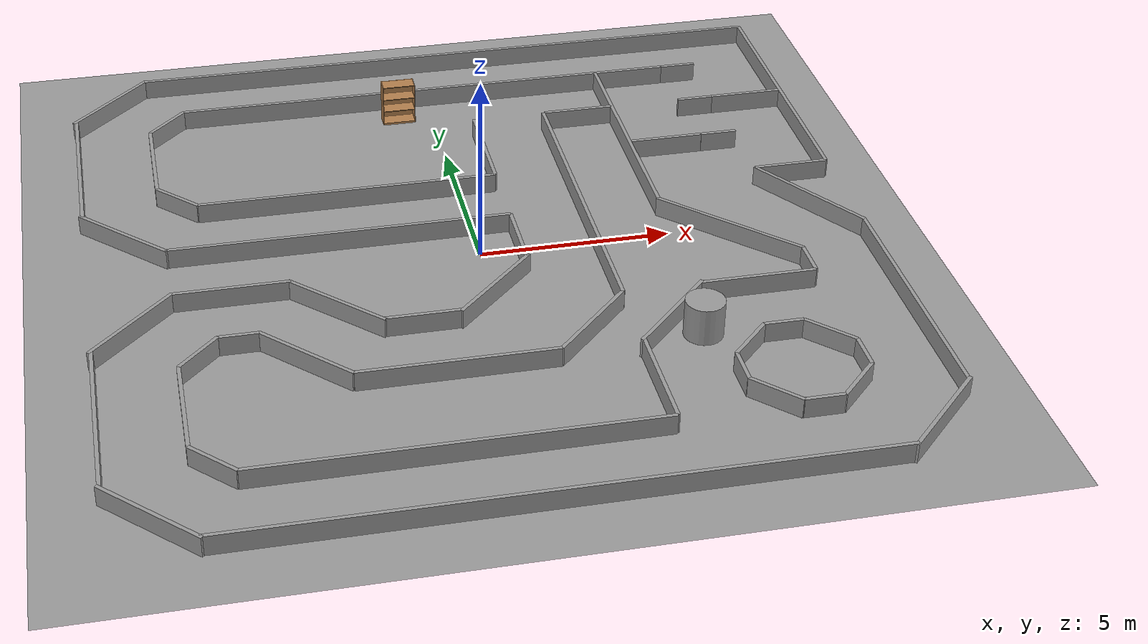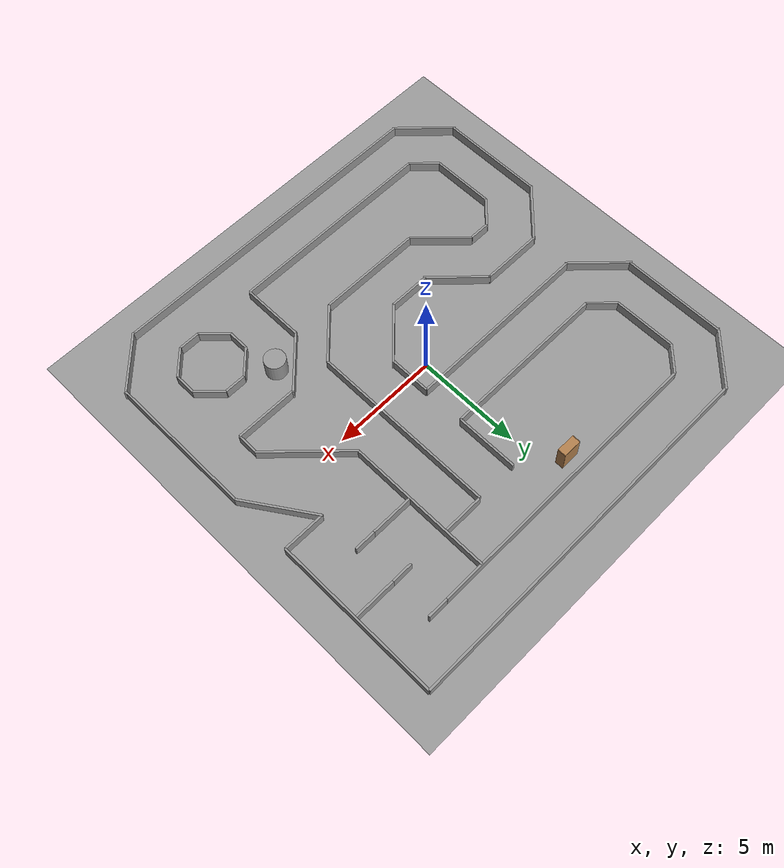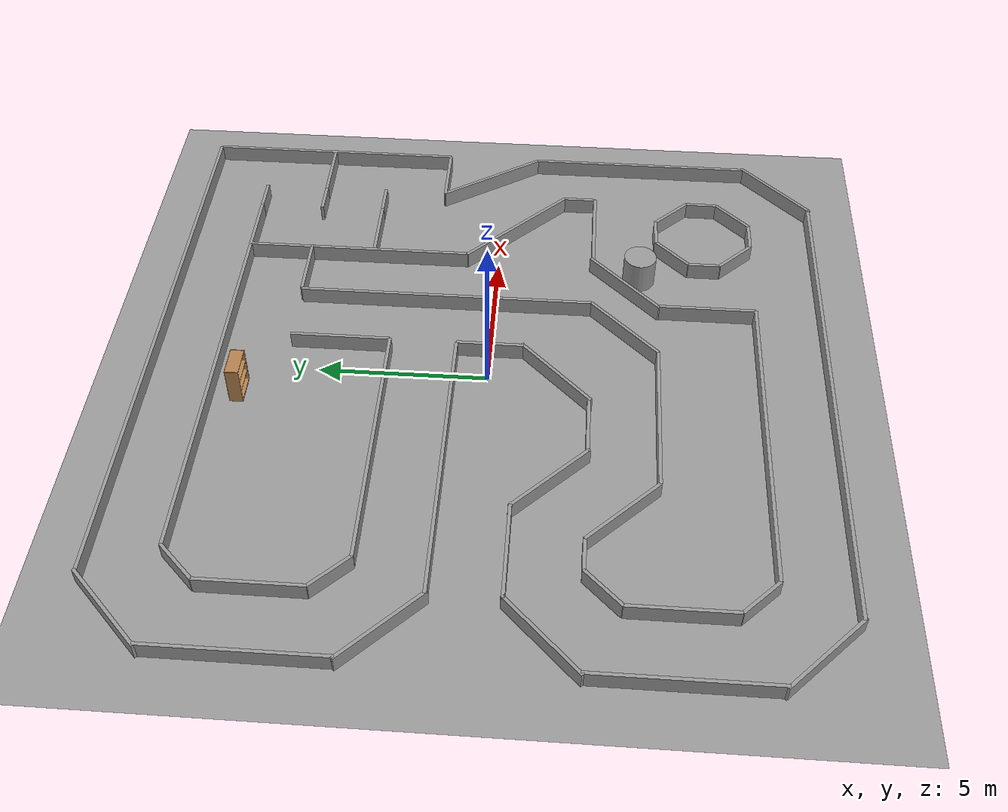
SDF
<sdf version="1.7">
 <world name="default">
  <light name="sun" type="directional">
   <pose>0 0 10 0 -0 0</pose>
   <diffuse>0.8 0.8 0.8 1</diffuse>
   <specular>0.2 0.2 0.2 1</specular>
   <attenuation>
    <range>1000</range>
    <constant>0.9</constant>
    <linear>0.01</linear>
    <quadratic>0.001</quadratic>
   </attenuation>
   <direction>0.5 0.1 -0.9</direction>
   <spot><inner_angle>0</inner_angle><outer_angle>0</outer_angle><falloff>0</falloff></spot>
  </light>
  <scene><ambient>0.4 0.4 0.4 1</ambient><background>0.7 0.7 0.7 1</background><shadows>1</shadows></scene>
  <physics type="ode">
   <max_step_size>0.01</max_step_size>
   <real_time_factor>1</real_time_factor>
   <real_time_update_rate>100</real_time_update_rate>
  </physics>
  <model name="bookshelf">
   <static>1</static>
   <link name="link">
    <inertial><mass>1</mass></inertial>
    <collision name="back">
     <pose>0 0.005 0.6 0 -0 0</pose>
     <geometry><box><size>0.9 0.01 1.2</size></box></geometry>
    </collision>
    <visual name="visual1">
     <pose>0 0.005 0.6 0 -0 0</pose>
     <geometry><box><size>0.9 0.01 1.2</size></box></geometry>
     <material>
      <script><uri>file://media/materials/scripts/gazebo.material</uri><name>Gazebo/Wood</name></script>
     </material>
    </visual>
    <collision name="left_side">
     <pose>0.45 -0.195 0.6 0 -0 0</pose>
     <geometry><box><size>0.02 0.4 1.2</size></box></geometry>
    </collision>
    <visual name="visual2">
     <pose>0.45 -0.195 0.6 0 -0 0</pose>
     <geometry><box><size>0.02 0.4 1.2</size></box></geometry>
     <material>
      <script><uri>file://media/materials/scripts/gazebo.material</uri><name>Gazebo/Wood</name></script>
     </material>
    </visual>
    <collision name="right_side">
     <pose>-0.45 -0.195 0.6 0 -0 0</pose>
     <geometry><box><size>0.02 0.4 1.2</size></box></geometry>
    </collision>
    <visual name="visual3">
     <pose>-0.45 -0.195 0.6 0 -0 0</pose>
     <geometry><box><size>0.02 0.4 1.2</size></box></geometry>
     <material>
      <script><uri>file://media/materials/scripts/gazebo.material</uri><name>Gazebo/Wood</name></script>
     </material>
    </visual>
    <collision name="bottom">
     <pose>0 -0.195 0.03 0 -0 0</pose>
     <geometry><box><size>0.88 0.4 0.06</size></box></geometry>
    </collision>
    <visual name="visual4">
     <pose>0 -0.195 0.03 0 -0 0</pose>
     <geometry><box><size>0.88 0.4 0.06</size></box></geometry>
     <material>
      <script><uri>file://media/materials/scripts/gazebo.material</uri><name>Gazebo/Wood</name></script>
     </material>
    </visual>
    <collision name="top">
     <pose>0 -0.195 1.19 0 -0 0</pose>
     <geometry><box><size>0.88 0.4 0.02</size></box></geometry>
    </collision>
    <visual name="visual5">
     <pose>0 -0.195 1.19 0 -0 0</pose>
     <geometry><box><size>0.88 0.4 0.02</size></box></geometry>
     <material>
      <script><uri>file://media/materials/scripts/gazebo.material</uri><name>Gazebo/Wood</name></script>
     </material>
    </visual>
    <collision name="low_shelf">
     <pose>0 -0.195 0.43 0 -0 0</pose>
     <geometry><box><size>0.88 0.4 0.02</size></box></geometry>
    </collision>
    <visual name="visual6">
     <pose>0 -0.195 0.43 0 -0 0</pose>
     <geometry><box><size>0.88 0.4 0.02</size></box></geometry>
     <material>
      <script><uri>file://media/materials/scripts/gazebo.material</uri><name>Gazebo/Wood</name></script>
     </material>
    </visual>
    <collision name="high_shelf">
     <pose>0 -0.195 0.8 0 -0 0</pose>
     <geometry><box><size>0.88 0.4 0.02</size></box></geometry>
    </collision>
    <visual name="visual7">
     <pose>0 -0.195 0.8 0 -0 0</pose>
     <geometry><box><size>0.88 0.4 0.02</size></box></geometry>
     <material>
      <script><uri>file://media/materials/scripts/gazebo.material</uri><name>Gazebo/Wood</name></script>
     </material>
    </visual>
    <velocity_decay><linear>0</linear><angular>0</angular></velocity_decay>
   </link>
   <pose>-0.964383 7.41151 0 0 -0 0</pose>
  </model>
  <model name="ground_plane_0">
   <static>1</static>
   <link name="link">
    <collision name="collision">
     <geometry><plane><normal>0 0 1</normal><size>100 100</size></plane></geometry>
     <surface><friction><ode><mu>100</mu><mu2>50</mu2></ode></friction></surface>
    </collision>
    <visual name="visual">
     <cast_shadows>0</cast_shadows>
     <geometry><plane><normal>0 0 1</normal><size>100 100</size></plane></geometry>
     <material>
      <script><uri>file://media/materials/scripts/gazebo.material</uri><name>Gazebo/Grey</name></script>
     </material>
    </visual>
    <velocity_decay><linear>0</linear><angular>0</angular></velocity_decay>
   </link>
   <pose>0.497681 0 0 0 -0 0</pose>
  </model>
  <model name="unit_cylinder_1">
   <pose>4.66019 -4.45194 0.49912 0 -0 1.8e-05</pose>
   <link name="link">
    <inertial>
     <mass>1</mass>
     <inertia><ixx>1</ixx><ixy>0</ixy><ixz>0</ixz><iyy>1</iyy><iyz>0</iyz><izz>1</izz></inertia>
    </inertial>
    <collision name="collision">
     <geometry><cylinder><radius>0.5</radius><length>1</length></cylinder></geometry>
    </collision>
    <visual name="visual">
     <geometry><cylinder><radius>0.5</radius><length>1</length></cylinder></geometry>
     <material>
      <script><uri>file://media/materials/scripts/gazebo.material</uri><name>Gazebo/Grey</name></script>
     </material>
    </visual>
    <velocity_decay><linear>0</linear><angular>0</angular></velocity_decay>
   </link>
   <static>0</static>
  </model>
  <gravity>0 0 -9.8</gravity>
  <magnetic_field>6e-06 2.3e-05 -4.2e-05</magnetic_field>
  <atmosphere type="adiabatic"/>
  <spherical_coordinates>
   <surface_model>EARTH_WGS84</surface_model>
   <latitude_deg>0</latitude_deg>
   <longitude_deg>0</longitude_deg>
   <elevation>0</elevation>
   <heading_deg>0</heading_deg>
  </spherical_coordinates>
  <model name="unit_box_1">
   <pose>-9 -2 0 0 -0 0.78</pose>
   <link name="link">
    <inertial>
     <mass>1</mass>
     <inertia><ixx>0</ixx><ixy>0</ixy><ixz>0</ixz><iyy>0</iyy><iyz>0</iyz><izz>0</izz></inertia>
    </inertial>
    <collision name="collision"><geometry><box><size>3 0.1 1</size></box></geometry></collision>
    <visual name="visual">
     <geometry><box><size>3 0.1 1</size></box></geometry>
     <material>
      <script><uri>file://media/materials/scripts/gazebo.material</uri><name>Gazebo/Grey</name></script>
     </material>
    </visual>
    <velocity_decay><linear>0</linear><angular>0</angular></velocity_decay>
   </link>
   <static>1</static>
  </model>
  <model name="unit_box_2">
   <pose>-10 -5.5 0 0 -0 0</pose>
   <link name="link">
    <inertial>
     <mass>1</mass>
     <inertia><ixx>0</ixx><ixy>0</ixy><ixz>0</ixz><iyy>0</iyy><iyz>0</iyz><izz>0</izz></inertia>
    </inertial>
    <collision name="collision"><geometry><box><size>0.1 5 1</size></box></geometry></collision>
    <visual name="visual">
     <geometry><box><size>0.1 5 1</size></box></geometry>
     <material>
      <script><uri>file://media/materials/scripts/gazebo.material</uri><name>Gazebo/Grey</name></script>
     </material>
    </visual>
    <velocity_decay><linear>0</linear><angular>0</angular></velocity_decay>
   </link>
   <static>1</static>
  </model>
  <model name="unit_box_3">
   <pose>-9 -9 0 0 0 -0.78</pose>
   <link name="link">
    <inertial>
     <mass>1</mass>
     <inertia><ixx>0</ixx><ixy>0</ixy><ixz>0</ixz><iyy>0</iyy><iyz>0</iyz><izz>0</izz></inertia>
    </inertial>
    <collision name="collision"><geometry><box><size>3 0.1 1</size></box></geometry></collision>
    <visual name="visual">
     <geometry><box><size>3 0.1 1</size></box></geometry>
     <material>
      <script><uri>file://media/materials/scripts/gazebo.material</uri><name>Gazebo/Grey</name></script>
     </material>
    </visual>
    <velocity_decay><linear>0</linear><angular>0</angular></velocity_decay>
   </link>
   <static>1</static>
  </model>
  <model name="unit_box_4">
   <pose>0 -10 0 0 -0 0</pose>
   <link name="link">
    <inertial>
     <mass>1</mass>
     <inertia><ixx>0</ixx><ixy>0</ixy><ixz>0</ixz><iyy>0</iyy><iyz>0</iyz><izz>0</izz></inertia>
    </inertial>
    <collision name="collision"><geometry><box><size>16 0.1 1</size></box></geometry></collision>
    <visual name="visual">
     <geometry><box><size>16 0.1 1</size></box></geometry>
     <material>
      <script><uri>file://media/materials/scripts/gazebo.material</uri><name>Gazebo/Grey</name></script>
     </material>
    </visual>
    <velocity_decay><linear>0</linear><angular>0</angular></velocity_decay>
   </link>
   <static>1</static>
  </model>
  <model name="unit_box_5">
   <pose>-2 -8 0 0 -0 0</pose>
   <link name="link">
    <inertial>
     <mass>1</mass>
     <inertia><ixx>0</ixx><ixy>0</ixy><ixz>0</ixz><iyy>0</iyy><iyz>0</iyz><izz>0</izz></inertia>
    </inertial>
    <collision name="collision"><geometry><box><size>10 0.1 1</size></box></geometry></collision>
    <visual name="visual">
     <geometry><box><size>10 0.1 1</size></box></geometry>
     <material>
      <script><uri>file://media/materials/scripts/gazebo.material</uri><name>Gazebo/Grey</name></script>
     </material>
    </visual>
    <velocity_decay><linear>0</linear><angular>0</angular></velocity_decay>
   </link>
   <static>1</static>
  </model>
  <model name="unit_box_6">
   <pose>9 -9 0 0 -0 0.78</pose>
   <link name="link">
    <inertial>
     <mass>1</mass>
     <inertia><ixx>0</ixx><ixy>0</ixy><ixz>0</ixz><iyy>0</iyy><iyz>0</iyz><izz>0</izz></inertia>
    </inertial>
    <collision name="collision"><geometry><box><size>3 0.1 1</size></box></geometry></collision>
    <visual name="visual">
     <geometry><box><size>3 0.1 1</size></box></geometry>
     <material>
      <script><uri>file://media/materials/scripts/gazebo.material</uri><name>Gazebo/Grey</name></script>
     </material>
    </visual>
    <velocity_decay><linear>0</linear><angular>0</angular></velocity_decay>
   </link>
   <static>1</static>
  </model>
  <model name="unit_box_7">
   <pose>3 -6.5 0 0 -0 0</pose>
   <link name="link">
    <inertial>
     <mass>1</mass>
     <inertia><ixx>0</ixx><ixy>0</ixy><ixz>0</ixz><iyy>0</iyy><iyz>0</iyz><izz>0</izz></inertia>
    </inertial>
    <collision name="collision"><geometry><box><size>0.1 3 1</size></box></geometry></collision>
    <visual name="visual">
     <geometry><box><size>0.1 3 1</size></box></geometry>
     <material>
      <script><uri>file://media/materials/scripts/gazebo.material</uri><name>Gazebo/Grey</name></script>
     </material>
    </visual>
    <velocity_decay><linear>0</linear><angular>0</angular></velocity_decay>
   </link>
   <static>1</static>
  </model>
  <model name="unit_box_8">
   <pose>5 -6.5 0 0 -0 0</pose>
   <link name="link">
    <inertial>
     <mass>1</mass>
     <inertia><ixx>0</ixx><ixy>0</ixy><ixz>0</ixz><iyy>0</iyy><iyz>0</iyz><izz>0</izz></inertia>
    </inertial>
    <collision name="collision"><geometry><box><size>0.1 1 1</size></box></geometry></collision>
    <visual name="visual">
     <geometry><box><size>0.1 1 1</size></box></geometry>
     <material>
      <script><uri>file://media/materials/scripts/gazebo.material</uri><name>Gazebo/Grey</name></script>
     </material>
    </visual>
    <velocity_decay><linear>0</linear><angular>0</angular></velocity_decay>
   </link>
   <static>1</static>
  </model>
  <model name="unit_box_9">
   <pose>8 -6.5 0 0 -0 0</pose>
   <link name="link">
    <inertial>
     <mass>1</mass>
     <inertia><ixx>0</ixx><ixy>0</ixy><ixz>0</ixz><iyy>0</iyy><iyz>0</iyz><izz>0</izz></inertia>
    </inertial>
    <collision name="collision"><geometry><box><size>0.1 1 1</size></box></geometry></collision>
    <visual name="visual">
     <geometry><box><size>0.1 1 1</size></box></geometry>
     <material>
      <script><uri>file://media/materials/scripts/gazebo.material</uri><name>Gazebo/Grey</name></script>
     </material>
    </visual>
    <velocity_decay><linear>0</linear><angular>0</angular></velocity_decay>
   </link>
   <static>1</static>
  </model>
  <model name="unit_box_10">
   <pose>7.5 -7.5 0 0 0 -0.78</pose>
   <link name="link">
    <inertial>
     <mass>1</mass>
     <inertia><ixx>0</ixx><ixy>0</ixy><ixz>0</ixz><iyy>0</iyy><iyz>0</iyz><izz>0</izz></inertia>
    </inertial>
    <collision name="collision"><geometry><box><size>0.1 1.45 1</size></box></geometry></collision>
    <visual name="visual">
     <geometry><box><size>0.1 1.45 1</size></box></geometry>
     <material>
      <script><uri>file://media/materials/scripts/gazebo.material</uri><name>Gazebo/Grey</name></script>
     </material>
    </visual>
    <velocity_decay><linear>0</linear><angular>0</angular></velocity_decay>
   </link>
   <static>1</static>
  </model>
  <model name="unit_box_11">
   <pose>6.5 -8 0 0 -0 0</pose>
   <link name="link">
    <inertial>
     <mass>1</mass>
     <inertia><ixx>0</ixx><ixy>0</ixy><ixz>0</ixz><iyy>0</iyy><iyz>0</iyz><izz>0</izz></inertia>
    </inertial>
    <collision name="collision"><geometry><box><size>1 0.1 1</size></box></geometry></collision>
    <visual name="visual">
     <geometry><box><size>1 0.1 1</size></box></geometry>
     <material>
      <script><uri>file://media/materials/scripts/gazebo.material</uri><name>Gazebo/Grey</name></script>
     </material>
    </visual>
    <velocity_decay><linear>0</linear><angular>0</angular></velocity_decay>
   </link>
   <static>1</static>
  </model>
  <model name="unit_box_12">
   <pose>5.5 -7.5 0 0 -0 0.78</pose>
   <link name="link">
    <inertial>
     <mass>1</mass>
     <inertia><ixx>0</ixx><ixy>0</ixy><ixz>0</ixz><iyy>0</iyy><iyz>0</iyz><izz>0</izz></inertia>
    </inertial>
    <collision name="collision"><geometry><box><size>0.1 1.45 1</size></box></geometry></collision>
    <visual name="visual">
     <geometry><box><size>0.1 1.45 1</size></box></geometry>
     <material>
      <script><uri>file://media/materials/scripts/gazebo.material</uri><name>Gazebo/Grey</name></script>
     </material>
    </visual>
    <velocity_decay><linear>0</linear><angular>0</angular></velocity_decay>
   </link>
   <static>1</static>
  </model>
  <model name="unit_box_13">
   <pose>5.5 -5.5 0 0 0 -0.78</pose>
   <link name="link">
    <inertial>
     <mass>1</mass>
     <inertia><ixx>0</ixx><ixy>0</ixy><ixz>0</ixz><iyy>0</iyy><iyz>0</iyz><izz>0</izz></inertia>
    </inertial>
    <collision name="collision"><geometry><box><size>0.1 1.45 1</size></box></geometry></collision>
    <visual name="visual">
     <geometry><box><size>0.1 1.45 1</size></box></geometry>
     <material>
      <script><uri>file://media/materials/scripts/gazebo.material</uri><name>Gazebo/Grey</name></script>
     </material>
    </visual>
    <velocity_decay><linear>0</linear><angular>0</angular></velocity_decay>
   </link>
   <static>1</static>
  </model>
  <model name="unit_box_14">
   <pose>7.5 -5.5 0 0 -0 0.78</pose>
   <link name="link">
    <inertial>
     <mass>1</mass>
     <inertia><ixx>0</ixx><ixy>0</ixy><ixz>0</ixz><iyy>0</iyy><iyz>0</iyz><izz>0</izz></inertia>
    </inertial>
    <collision name="collision"><geometry><box><size>0.1 1.45 1</size></box></geometry></collision>
    <visual name="visual">
     <geometry><box><size>0.1 1.45 1</size></box></geometry>
     <material>
      <script><uri>file://media/materials/scripts/gazebo.material</uri><name>Gazebo/Grey</name></script>
     </material>
    </visual>
    <velocity_decay><linear>0</linear><angular>0</angular></velocity_decay>
   </link>
   <static>1</static>
  </model>
  <model name="unit_box_15">
   <pose>6.50134 -4.99626 0 0 -0 0</pose>
   <link name="link">
    <inertial>
     <mass>1</mass>
     <inertia><ixx>0</ixx><ixy>0</ixy><ixz>0</ixz><iyy>0</iyy><iyz>0</iyz><izz>0</izz></inertia>
    </inertial>
    <collision name="collision"><geometry><box><size>1 0.1 1</size></box></geometry></collision>
    <visual name="visual">
     <geometry><box><size>1 0.1 1</size></box></geometry>
     <material>
      <script><uri>file://media/materials/scripts/gazebo.material</uri><name>Gazebo/Grey</name></script>
     </material>
    </visual>
    <velocity_decay><linear>0</linear><angular>0</angular></velocity_decay>
   </link>
   <static>1</static>
  </model>
  <model name="unit_box_16">
   <pose>4 -4 0 0 0 -0.78</pose>
   <link name="link">
    <inertial>
     <mass>1</mass>
     <inertia><ixx>0</ixx><ixy>0</ixy><ixz>0</ixz><iyy>0</iyy><iyz>0</iyz><izz>0</izz></inertia>
    </inertial>
    <collision name="collision"><geometry><box><size>0.1 3 1</size></box></geometry></collision>
    <visual name="visual">
     <geometry><box><size>0.1 3 1</size></box></geometry>
     <material>
      <script><uri>file://media/materials/scripts/gazebo.material</uri><name>Gazebo/Grey</name></script>
     </material>
    </visual>
    <velocity_decay><linear>0</linear><angular>0</angular></velocity_decay>
   </link>
   <static>1</static>
  </model>
  <model name="unit_box_17">
   <pose>10 -4.5 0 0 -0 0</pose>
   <link name="link">
    <inertial>
     <mass>1</mass>
     <inertia><ixx>0</ixx><ixy>0</ixy><ixz>0</ixz><iyy>0</iyy><iyz>0</iyz><izz>0</izz></inertia>
    </inertial>
    <collision name="collision"><geometry><box><size>0.1 7 1</size></box></geometry></collision>
    <visual name="visual">
     <geometry><box><size>0.1 7 1</size></box></geometry>
     <material>
      <script><uri>file://media/materials/scripts/gazebo.material</uri><name>Gazebo/Grey</name></script>
     </material>
    </visual>
    <velocity_decay><linear>0</linear><angular>0</angular></velocity_decay>
   </link>
   <static>1</static>
  </model>
  <model name="unit_box_18">
   <pose>6.5 -3 0 0 -0 0</pose>
   <link name="link">
    <inertial>
     <mass>1</mass>
     <inertia><ixx>0</ixx><ixy>0</ixy><ixz>0</ixz><iyy>0</iyy><iyz>0</iyz><izz>0</izz></inertia>
    </inertial>
    <collision name="collision"><geometry><box><size>3 0.1 1</size></box></geometry></collision>
    <visual name="visual">
     <geometry><box><size>3 0.1 1</size></box></geometry>
     <material>
      <script><uri>file://media/materials/scripts/gazebo.material</uri><name>Gazebo/Grey</name></script>
     </material>
    </visual>
    <velocity_decay><linear>0</linear><angular>0</angular></velocity_decay>
   </link>
   <static>1</static>
  </model>
  <model name="unit_box_19">
   <pose>1 10 0 0 -0 0</pose>
   <link name="link">
    <inertial>
     <mass>1</mass>
     <inertia><ixx>0</ixx><ixy>0</ixy><ixz>0</ixz><iyy>0</iyy><iyz>0</iyz><izz>0</izz></inertia>
    </inertial>
    <collision name="collision"><geometry><box><size>18 0.1 1</size></box></geometry></collision>
    <visual name="visual">
     <geometry><box><size>18 0.1 1</size></box></geometry>
     <material>
      <script><uri>file://media/materials/scripts/gazebo.material</uri><name>Gazebo/Grey</name></script>
     </material>
    </visual>
    <velocity_decay><linear>0</linear><angular>0</angular></velocity_decay>
   </link>
   <static>1</static>
  </model>
  <model name="unit_box_20">
   <pose>10 6 0 0 -0 0</pose>
   <link name="link">
    <inertial>
     <mass>1</mass>
     <inertia><ixx>0</ixx><ixy>0</ixy><ixz>0</ixz><iyy>0</iyy><iyz>0</iyz><izz>0</izz></inertia>
    </inertial>
    <collision name="collision"><geometry><box><size>0.1 8 1</size></box></geometry></collision>
    <visual name="visual">
     <geometry><box><size>0.1 8 1</size></box></geometry>
     <material>
      <script><uri>file://media/materials/scripts/gazebo.material</uri><name>Gazebo/Grey</name></script>
     </material>
    </visual>
    <velocity_decay><linear>0</linear><angular>0</angular></velocity_decay>
   </link>
   <static>1</static>
  </model>
  <model name="unit_box_21">
   <pose>5 4.5 0 0 -0 0</pose>
   <link name="link">
    <inertial>
     <mass>1</mass>
     <inertia><ixx>0</ixx><ixy>0</ixy><ixz>0</ixz><iyy>0</iyy><iyz>0</iyz><izz>0</izz></inertia>
    </inertial>
    <collision name="collision"><geometry><box><size>0.1 7 1</size></box></geometry></collision>
    <visual name="visual">
     <geometry><box><size>0.1 7 1</size></box></geometry>
     <material>
      <script><uri>file://media/materials/scripts/gazebo.material</uri><name>Gazebo/Grey</name></script>
     </material>
    </visual>
    <velocity_decay><linear>0</linear><angular>0</angular></velocity_decay>
   </link>
   <static>1</static>
  </model>
  <model name="unit_box_22">
   <pose>0 8 0 0 -0 0</pose>
   <link name="link">
    <inertial>
     <mass>1</mass>
     <inertia><ixx>0</ixx><ixy>0</ixy><ixz>0</ixz><iyy>0</iyy><iyz>0</iyz><izz>0</izz></inertia>
    </inertial>
    <collision name="collision"><geometry><box><size>14 0.1 1</size></box></geometry></collision>
    <visual name="visual">
     <geometry><box><size>14 0.1 1</size></box></geometry>
     <material>
      <script><uri>file://media/materials/scripts/gazebo.material</uri><name>Gazebo/Grey</name></script>
     </material>
    </visual>
    <velocity_decay><linear>0</linear><angular>0</angular></velocity_decay>
   </link>
   <static>1</static>
  </model>
  <model name="unit_box_23">
   <pose>9 2 0 0 -0 0</pose>
   <link name="link">
    <inertial>
     <mass>1</mass>
     <inertia><ixx>0</ixx><ixy>0</ixy><ixz>0</ixz><iyy>0</iyy><iyz>0</iyz><izz>0</izz></inertia>
    </inertial>
    <collision name="collision"><geometry><box><size>2 0.1 1</size></box></geometry></collision>
    <visual name="visual">
     <geometry><box><size>2 0.1 1</size></box></geometry>
     <material>
      <script><uri>file://media/materials/scripts/gazebo.material</uri><name>Gazebo/Grey</name></script>
     </material>
    </visual>
    <velocity_decay><linear>0</linear><angular>0</angular></velocity_decay>
   </link>
   <static>1</static>
  </model>
  <model name="unit_box_24">
   <pose>8.95228 6 0 0 -0 0</pose>
   <link name="link">
    <inertial>
     <mass>1</mass>
     <inertia><ixx>0</ixx><ixy>0</ixy><ixz>0</ixz><iyy>0</iyy><iyz>0</iyz><izz>0</izz></inertia>
    </inertial>
    <collision name="collision"><geometry><box><size>2 0.1 1</size></box></geometry></collision>
    <visual name="visual">
     <geometry><box><size>2 0.1 1</size></box></geometry>
     <material>
      <script><uri>file://media/materials/scripts/gazebo.material</uri><name>Gazebo/Grey</name></script>
     </material>
    </visual>
    <velocity_decay><linear>0</linear><angular>0</angular></velocity_decay>
   </link>
   <static>1</static>
  </model>
  <model name="unit_box_25">
   <pose>6.04566 4 0 0 -0 0</pose>
   <link name="link">
    <inertial>
     <mass>1</mass>
     <inertia><ixx>0</ixx><ixy>0</ixy><ixz>0</ixz><iyy>0</iyy><iyz>0</iyz><izz>0</izz></inertia>
    </inertial>
    <collision name="collision"><geometry><box><size>2 0.1 1</size></box></geometry></collision>
    <visual name="visual">
     <geometry><box><size>2 0.1 1</size></box></geometry>
     <material>
      <script><uri>file://media/materials/scripts/gazebo.material</uri><name>Gazebo/Grey</name></script>
     </material>
    </visual>
    <velocity_decay><linear>0</linear><angular>0</angular></velocity_decay>
   </link>
   <static>1</static>
  </model>
  <model name="unit_box_26">
   <pose>9 0.5 0 0 0 -0.984</pose>
   <link name="link">
    <inertial>
     <mass>1</mass>
     <inertia><ixx>0</ixx><ixy>0</ixy><ixz>0</ixz><iyy>0</iyy><iyz>0</iyz><izz>0</izz></inertia>
    </inertial>
    <collision name="collision"><geometry><box><size>3.65 0.1 1</size></box></geometry></collision>
    <visual name="visual">
     <geometry><box><size>3.65 0.1 1</size></box></geometry>
     <material>
      <script><uri>file://media/materials/scripts/gazebo.material</uri><name>Gazebo/Grey</name></script>
     </material>
    </visual>
    <velocity_decay><linear>0</linear><angular>0</angular></velocity_decay>
   </link>
   <static>1</static>
  </model>
  <model name="unit_box_27">
   <pose>6.5 -0.5 0 0 0 -0.78</pose>
   <link name="link">
    <inertial>
     <mass>1</mass>
     <inertia><ixx>0</ixx><ixy>0</ixy><ixz>0</ixz><iyy>0</iyy><iyz>0</iyz><izz>0</izz></inertia>
    </inertial>
    <collision name="collision"><geometry><box><size>4.3 0.1 1</size></box></geometry></collision>
    <visual name="visual">
     <geometry><box><size>4.3 0.1 1</size></box></geometry>
     <material>
      <script><uri>file://media/materials/scripts/gazebo.material</uri><name>Gazebo/Grey</name></script>
     </material>
    </visual>
    <velocity_decay><linear>0</linear><angular>0</angular></velocity_decay>
   </link>
   <static>1</static>
  </model>
  <model name="unit_box_28">
   <pose>8 -2.5 0 0 -0 0</pose>
   <link name="link">
    <inertial>
     <mass>1</mass>
     <inertia><ixx>0</ixx><ixy>0</ixy><ixz>0</ixz><iyy>0</iyy><iyz>0</iyz><izz>0</izz></inertia>
    </inertial>
    <collision name="collision"><geometry><box><size>0.1 1 1</size></box></geometry></collision>
    <visual name="visual">
     <geometry><box><size>0.1 1 1</size></box></geometry>
     <material>
      <script><uri>file://media/materials/scripts/gazebo.material</uri><name>Gazebo/Grey</name></script>
     </material>
    </visual>
    <velocity_decay><linear>0</linear><angular>0</angular></velocity_decay>
   </link>
   <static>1</static>
  </model>
  <model name="unit_box_29">
   <pose>-9 9 0 0 -0 0.78</pose>
   <link name="link">
    <inertial>
     <mass>1</mass>
     <inertia><ixx>0</ixx><ixy>0</ixy><ixz>0</ixz><iyy>0</iyy><iyz>0</iyz><izz>0</izz></inertia>
    </inertial>
    <collision name="collision"><geometry><box><size>3 0.1 1</size></box></geometry></collision>
    <visual name="visual">
     <geometry><box><size>3 0.1 1</size></box></geometry>
     <material>
      <script><uri>file://media/materials/scripts/gazebo.material</uri><name>Gazebo/Grey</name></script>
     </material>
    </visual>
    <velocity_decay><linear>0</linear><angular>0</angular></velocity_decay>
   </link>
   <static>1</static>
  </model>
  <model name="unit_box_30">
   <pose>-10 5.5 0 0 -0 0</pose>
   <link name="link">
    <inertial>
     <mass>1</mass>
     <inertia><ixx>0</ixx><ixy>0</ixy><ixz>0</ixz><iyy>0</iyy><iyz>0</iyz><izz>0</izz></inertia>
    </inertial>
    <collision name="collision"><geometry><box><size>0.1 5 1</size></box></geometry></collision>
    <visual name="visual">
     <geometry><box><size>0.1 5 1</size></box></geometry>
     <material>
      <script><uri>file://media/materials/scripts/gazebo.material</uri><name>Gazebo/Grey</name></script>
     </material>
    </visual>
    <velocity_decay><linear>0</linear><angular>0</angular></velocity_decay>
   </link>
   <static>1</static>
  </model>
  <model name="unit_box_31">
   <pose>-9 2 0 0 0 -0.78</pose>
   <link name="link">
    <inertial>
     <mass>1</mass>
     <inertia><ixx>0</ixx><ixy>0</ixy><ixz>0</ixz><iyy>0</iyy><iyz>0</iyz><izz>0</izz></inertia>
    </inertial>
    <collision name="collision"><geometry><box><size>3 0.1 1</size></box></geometry></collision>
    <visual name="visual">
     <geometry><box><size>3 0.1 1</size></box></geometry>
     <material>
      <script><uri>file://media/materials/scripts/gazebo.material</uri><name>Gazebo/Grey</name></script>
     </material>
    </visual>
    <velocity_decay><linear>0</linear><angular>0</angular></velocity_decay>
   </link>
   <static>1</static>
  </model>
  <model name="unit_box_32">
   <pose>-3 3 0 0 -0 0</pose>
   <link name="link">
    <inertial>
     <mass>1</mass>
     <inertia><ixx>0</ixx><ixy>0</ixy><ixz>0</ixz><iyy>0</iyy><iyz>0</iyz><izz>0</izz></inertia>
    </inertial>
    <collision name="collision"><geometry><box><size>8 0.1 1</size></box></geometry></collision>
    <visual name="visual">
     <geometry><box><size>8 0.1 1</size></box></geometry>
     <material>
      <script><uri>file://media/materials/scripts/gazebo.material</uri><name>Gazebo/Grey</name></script>
     </material>
    </visual>
    <velocity_decay><linear>0</linear><angular>0</angular></velocity_decay>
   </link>
   <static>1</static>
  </model>
  <model name="unit_box_33">
   <pose>-8 5.5 0 0 -0 0</pose>
   <link name="link">
    <inertial>
     <mass>1</mass>
     <inertia><ixx>0</ixx><ixy>0</ixy><ixz>0</ixz><iyy>0</iyy><iyz>0</iyz><izz>0</izz></inertia>
    </inertial>
    <collision name="collision"><geometry><box><size>0.1 3 1</size></box></geometry></collision>
    <visual name="visual">
     <geometry><box><size>0.1 3 1</size></box></geometry>
     <material>
      <script><uri>file://media/materials/scripts/gazebo.material</uri><name>Gazebo/Grey</name></script>
     </material>
    </visual>
    <velocity_decay><linear>0</linear><angular>0</angular></velocity_decay>
   </link>
   <static>1</static>
  </model>
  <model name="unit_box_34">
   <pose>-7.5 3.5 0 0 -0 0.78</pose>
   <link name="link">
    <inertial>
     <mass>1</mass>
     <inertia><ixx>0</ixx><ixy>0</ixy><ixz>0</ixz><iyy>0</iyy><iyz>0</iyz><izz>0</izz></inertia>
    </inertial>
    <collision name="collision"><geometry><box><size>0.1 1.45 1</size></box></geometry></collision>
    <visual name="visual">
     <geometry><box><size>0.1 1.45 1</size></box></geometry>
     <material>
      <script><uri>file://media/materials/scripts/gazebo.material</uri><name>Gazebo/Grey</name></script>
     </material>
    </visual>
    <velocity_decay><linear>0</linear><angular>0</angular></velocity_decay>
   </link>
   <static>1</static>
  </model>
  <model name="unit_box_35">
   <pose>-7.5 7.5 0 0 0 -0.78</pose>
   <link name="link">
    <inertial>
     <mass>1</mass>
     <inertia><ixx>0</ixx><ixy>0</ixy><ixz>0</ixz><iyy>0</iyy><iyz>0</iyz><izz>0</izz></inertia>
    </inertial>
    <collision name="collision"><geometry><box><size>0.1 1.45 1</size></box></geometry></collision>
    <visual name="visual">
     <geometry><box><size>0.1 1.45 1</size></box></geometry>
     <material>
      <script><uri>file://media/materials/scripts/gazebo.material</uri><name>Gazebo/Grey</name></script>
     </material>
    </visual>
    <velocity_decay><linear>0</linear><angular>0</angular></velocity_decay>
   </link>
   <static>1</static>
  </model>
  <model name="unit_box_36">
   <pose>1 4.5 0 0 -0 0</pose>
   <link name="link">
    <inertial>
     <mass>1</mass>
     <inertia><ixx>0</ixx><ixy>0</ixy><ixz>0</ixz><iyy>0</iyy><iyz>0</iyz><izz>0</izz></inertia>
    </inertial>
    <collision name="collision"><geometry><box><size>0.1 3 1</size></box></geometry></collision>
    <visual name="visual">
     <geometry><box><size>0.1 3 1</size></box></geometry>
     <material>
      <script><uri>file://media/materials/scripts/gazebo.material</uri><name>Gazebo/Grey</name></script>
     </material>
    </visual>
    <velocity_decay><linear>0</linear><angular>0</angular></velocity_decay>
   </link>
   <static>1</static>
  </model>
  <model name="unit_box_37">
   <pose>3 1.5 0 0 -0 0</pose>
   <link name="link">
    <inertial>
     <mass>1</mass>
     <inertia><ixx>0</ixx><ixy>0</ixy><ixz>0</ixz><iyy>0</iyy><iyz>0</iyz><izz>0</izz></inertia>
    </inertial>
    <collision name="collision"><geometry><box><size>0.1 9 1</size></box></geometry></collision>
    <visual name="visual">
     <geometry><box><size>0.1 9 1</size></box></geometry>
     <material>
      <script><uri>file://media/materials/scripts/gazebo.material</uri><name>Gazebo/Grey</name></script>
     </material>
    </visual>
    <velocity_decay><linear>0</linear><angular>0</angular></velocity_decay>
   </link>
   <static>1</static>
  </model>
  <model name="unit_box_38">
   <pose>-3.5 1 0 0 -0 0</pose>
   <link name="link">
    <inertial>
     <mass>1</mass>
     <inertia><ixx>0</ixx><ixy>0</ixy><ixz>0</ixz><iyy>0</iyy><iyz>0</iyz><izz>0</izz></inertia>
    </inertial>
    <collision name="collision"><geometry><box><size>9 0.1 1</size></box></geometry></collision>
    <visual name="visual">
     <geometry><box><size>9 0.1 1</size></box></geometry>
     <material>
      <script><uri>file://media/materials/scripts/gazebo.material</uri><name>Gazebo/Grey</name></script>
     </material>
    </visual>
    <velocity_decay><linear>0</linear><angular>0</angular></velocity_decay>
   </link>
   <static>1</static>
  </model>
  <model name="unit_box_39">
   <pose>-8 -5.5 0 0 -0 0</pose>
   <link name="link">
    <inertial>
     <mass>1</mass>
     <inertia><ixx>0</ixx><ixy>0</ixy><ixz>0</ixz><iyy>0</iyy><iyz>0</iyz><izz>0</izz></inertia>
    </inertial>
    <collision name="collision"><geometry><box><size>0.1 3 1</size></box></geometry></collision>
    <visual name="visual">
     <geometry><box><size>0.1 3 1</size></box></geometry>
     <material>
      <script><uri>file://media/materials/scripts/gazebo.material</uri><name>Gazebo/Grey</name></script>
     </material>
    </visual>
    <velocity_decay><linear>0</linear><angular>0</angular></velocity_decay>
   </link>
   <static>1</static>
  </model>
  <model name="unit_box_40">
   <pose>-7.5 -7.5 0 0 -0 0.78</pose>
   <link name="link">
    <inertial>
     <mass>1</mass>
     <inertia><ixx>0</ixx><ixy>0</ixy><ixz>0</ixz><iyy>0</iyy><iyz>0</iyz><izz>0</izz></inertia>
    </inertial>
    <collision name="collision"><geometry><box><size>0.1 1.45 1</size></box></geometry></collision>
    <visual name="visual">
     <geometry><box><size>0.1 1.45 1</size></box></geometry>
     <material>
      <script><uri>file://media/materials/scripts/gazebo.material</uri><name>Gazebo/Grey</name></script>
     </material>
    </visual>
    <velocity_decay><linear>0</linear><angular>0</angular></velocity_decay>
   </link>
   <static>1</static>
  </model>
  <model name="unit_box_41">
   <pose>-7.5 -3.5 0 0 0 -0.78</pose>
   <link name="link">
    <inertial>
     <mass>1</mass>
     <inertia><ixx>0</ixx><ixy>0</ixy><ixz>0</ixz><iyy>0</iyy><iyz>0</iyz><izz>0</izz></inertia>
    </inertial>
    <collision name="collision"><geometry><box><size>0.1 1.45 1</size></box></geometry></collision>
    <visual name="visual">
     <geometry><box><size>0.1 1.45 1</size></box></geometry>
     <material>
      <script><uri>file://media/materials/scripts/gazebo.material</uri><name>Gazebo/Grey</name></script>
     </material>
    </visual>
    <velocity_decay><linear>0</linear><angular>0</angular></velocity_decay>
   </link>
   <static>1</static>
  </model>
  <model name="unit_box_42">
   <pose>-6.5043 -0.978945 0 0 -0 0</pose>
   <link name="link">
    <inertial>
     <mass>1</mass>
     <inertia><ixx>0</ixx><ixy>0</ixy><ixz>0</ixz><iyy>0</iyy><iyz>0</iyz><izz>0</izz></inertia>
    </inertial>
    <collision name="collision"><geometry><box><size>3 0.1 1</size></box></geometry></collision>
    <visual name="visual">
     <geometry><box><size>3 0.1 1</size></box></geometry>
     <material>
      <script><uri>file://media/materials/scripts/gazebo.material</uri><name>Gazebo/Grey</name></script>
     </material>
    </visual>
    <velocity_decay><linear>0</linear><angular>0</angular></velocity_decay>
   </link>
   <static>1</static>
  </model>
  <model name="unit_box_43">
   <pose>-6.5 -3 0 0 -0 0</pose>
   <link name="link">
    <inertial>
     <mass>1</mass>
     <inertia><ixx>0</ixx><ixy>0</ixy><ixz>0</ixz><iyy>0</iyy><iyz>0</iyz><izz>0</izz></inertia>
    </inertial>
    <collision name="collision"><geometry><box><size>1 0.1 1</size></box></geometry></collision>
    <visual name="visual">
     <geometry><box><size>1 0.1 1</size></box></geometry>
     <material>
      <script><uri>file://media/materials/scripts/gazebo.material</uri><name>Gazebo/Grey</name></script>
     </material>
    </visual>
    <velocity_decay><linear>0</linear><angular>0</angular></velocity_decay>
   </link>
   <static>1</static>
  </model>
  <model name="unit_box_44">
   <pose>-5 -4 0 0 -0 0.78</pose>
   <link name="link">
    <inertial>
     <mass>1</mass>
     <inertia><ixx>0</ixx><ixy>0</ixy><ixz>0</ixz><iyy>0</iyy><iyz>0</iyz><izz>0</izz></inertia>
    </inertial>
    <collision name="collision"><geometry><box><size>0.1 2.85 1</size></box></geometry></collision>
    <visual name="visual">
     <geometry><box><size>0.1 2.85 1</size></box></geometry>
     <material>
      <script><uri>file://media/materials/scripts/gazebo.material</uri><name>Gazebo/Grey</name></script>
     </material>
    </visual>
    <velocity_decay><linear>0</linear><angular>0</angular></velocity_decay>
   </link>
   <static>1</static>
  </model>
  <model name="unit_box_45">
   <pose>-4 -2 0 0 0 -0.78</pose>
   <link name="link">
    <inertial>
     <mass>1</mass>
     <inertia><ixx>0</ixx><ixy>0</ixy><ixz>0</ixz><iyy>0</iyy><iyz>0</iyz><izz>0</izz></inertia>
    </inertial>
    <collision name="collision"><geometry><box><size>3 0.1 1</size></box></geometry></collision>
    <visual name="visual">
     <geometry><box><size>3 0.1 1</size></box></geometry>
     <material>
      <script><uri>file://media/materials/scripts/gazebo.material</uri><name>Gazebo/Grey</name></script>
     </material>
    </visual>
    <velocity_decay><linear>0</linear><angular>0</angular></velocity_decay>
   </link>
   <static>1</static>
  </model>
  <model name="unit_box_46">
   <pose>-1.5 -5 0 0 -0 0</pose>
   <link name="link">
    <inertial>
     <mass>1</mass>
     <inertia><ixx>0</ixx><ixy>0</ixy><ixz>0</ixz><iyy>0</iyy><iyz>0</iyz><izz>0</izz></inertia>
    </inertial>
    <collision name="collision"><geometry><box><size>5 0.1 1</size></box></geometry></collision>
    <visual name="visual">
     <geometry><box><size>5 0.1 1</size></box></geometry>
     <material>
      <script><uri>file://media/materials/scripts/gazebo.material</uri><name>Gazebo/Grey</name></script>
     </material>
    </visual>
    <velocity_decay><linear>0</linear><angular>0</angular></velocity_decay>
   </link>
   <static>1</static>
  </model>
  <model name="unit_box_47">
   <pose>2 -4 0 0 0 -0.78</pose>
   <link name="link">
    <inertial>
     <mass>1</mass>
     <inertia><ixx>0</ixx><ixy>0</ixy><ixz>0</ixz><iyy>0</iyy><iyz>0</iyz><izz>0</izz></inertia>
    </inertial>
    <collision name="collision"><geometry><box><size>0.1 2.85 1</size></box></geometry></collision>
    <visual name="visual">
     <geometry><box><size>0.1 2.85 1</size></box></geometry>
     <material>
      <script><uri>file://media/materials/scripts/gazebo.material</uri><name>Gazebo/Grey</name></script>
     </material>
    </visual>
    <velocity_decay><linear>0</linear><angular>0</angular></velocity_decay>
   </link>
   <static>1</static>
  </model>
  <model name="unit_box_48">
   <pose>-2 -3 0 0 -0 0</pose>
   <link name="link">
    <inertial>
     <mass>1</mass>
     <inertia><ixx>0</ixx><ixy>0</ixy><ixz>0</ixz><iyy>0</iyy><iyz>0</iyz><izz>0</izz></inertia>
    </inertial>
    <collision name="collision"><geometry><box><size>2 0.1 1</size></box></geometry></collision>
    <visual name="visual">
     <geometry><box><size>2 0.1 1</size></box></geometry>
     <material>
      <script><uri>file://media/materials/scripts/gazebo.material</uri><name>Gazebo/Grey</name></script>
     </material>
    </visual>
    <velocity_decay><linear>0</linear><angular>0</angular></velocity_decay>
   </link>
   <static>1</static>
  </model>
  <model name="unit_box_49">
   <pose>0 -2 0 0 -0 0.78</pose>
   <link name="link">
    <inertial>
     <mass>1</mass>
     <inertia><ixx>0</ixx><ixy>0</ixy><ixz>0</ixz><iyy>0</iyy><iyz>0</iyz><izz>0</izz></inertia>
    </inertial>
    <collision name="collision"><geometry><box><size>3 0.1 1</size></box></geometry></collision>
    <visual name="visual">
     <geometry><box><size>3 0.1 1</size></box></geometry>
     <material>
      <script><uri>file://media/materials/scripts/gazebo.material</uri><name>Gazebo/Grey</name></script>
     </material>
    </visual>
    <velocity_decay><linear>0</linear><angular>0</angular></velocity_decay>
   </link>
   <static>1</static>
  </model>
  <model name="unit_box_50">
   <pose>1 0 0 0 -0 0</pose>
   <link name="link">
    <inertial>
     <mass>1</mass>
     <inertia><ixx>0</ixx><ixy>0</ixy><ixz>0</ixz><iyy>0</iyy><iyz>0</iyz><izz>0</izz></inertia>
    </inertial>
    <collision name="collision"><geometry><box><size>0.1 2 1</size></box></geometry></collision>
    <visual name="visual">
     <geometry><box><size>0.1 2 1</size></box></geometry>
     <material>
      <script><uri>file://media/materials/scripts/gazebo.material</uri><name>Gazebo/Grey</name></script>
     </material>
    </visual>
    <velocity_decay><linear>0</linear><angular>0</angular></velocity_decay>
   </link>
   <static>1</static>
  </model>
  <model name="unit_box_15_clone">
   <pose>7.55032 3.99963 0 0 -0 0</pose>
   <link name="link">
    <inertial>
     <mass>1</mass>
     <inertia><ixx>0</ixx><ixy>0</ixy><ixz>0</ixz><iyy>0</iyy><iyz>0</iyz><izz>0</izz></inertia>
    </inertial>
    <collision name="collision"><geometry><box><size>1 0.1 1</size></box></geometry></collision>
    <visual name="visual">
     <geometry><box><size>1 0.1 1</size></box></geometry>
     <material>
      <script><uri>file://media/materials/scripts/gazebo.material</uri><name>Gazebo/Grey</name></script>
     </material>
    </visual>
    <velocity_decay><linear>0</linear><angular>0</angular></velocity_decay>
   </link>
   <static>1</static>
  </model>
  <model name="unit_box_15_clone_0">
   <pose>7.45424 5.99762 0 0 -0 0</pose>
   <link name="link">
    <inertial>
     <mass>1</mass>
     <inertia><ixx>0</ixx><ixy>0</ixy><ixz>0</ixz><iyy>0</iyy><iyz>0</iyz><izz>0</izz></inertia>
    </inertial>
    <collision name="collision"><geometry><box><size>1 0.1 1</size></box></geometry></collision>
    <visual name="visual">
     <geometry><box><size>1 0.1 1</size></box></geometry>
     <material>
      <script><uri>file://media/materials/scripts/gazebo.material</uri><name>Gazebo/Grey</name></script>
     </material>
    </visual>
    <velocity_decay><linear>0</linear><angular>0</angular></velocity_decay>
   </link>
   <static>1</static>
  </model>
  <model name="unit_box_15_clone_0_clone">
   <pose>7.49114 7.99879 0 0 -0 0</pose>
   <link name="link">
    <inertial>
     <mass>1</mass>
     <inertia><ixx>0</ixx><ixy>0</ixy><ixz>0</ixz><iyy>0</iyy><iyz>0</iyz><izz>0</izz></inertia>
    </inertial>
    <collision name="collision"><geometry><box><size>1 0.1 1</size></box></geometry></collision>
    <visual name="visual">
     <geometry><box><size>1 0.1 1</size></box></geometry>
     <material>
      <script><uri>file://media/materials/scripts/gazebo.material</uri><name>Gazebo/Grey</name></script>
     </material>
    </visual>
    <velocity_decay><linear>0</linear><angular>0</angular></velocity_decay>
   </link>
   <static>1</static>
  </model>
  <model name="unit_box_25_clone">
   <pose>4.04346 6.00724 0 0 -0 0</pose>
   <link name="link">
    <inertial>
     <mass>1</mass>
     <inertia><ixx>0</ixx><ixy>0</ixy><ixz>0</ixz><iyy>0</iyy><iyz>0</iyz><izz>0</izz></inertia>
    </inertial>
    <collision name="collision"><geometry><box><size>2 0.1 1</size></box></geometry></collision>
    <visual name="visual">
     <geometry><box><size>2 0.1 1</size></box></geometry>
     <material>
      <script><uri>file://media/materials/scripts/gazebo.material</uri><name>Gazebo/Grey</name></script>
     </material>
    </visual>
    <velocity_decay><linear>0</linear><angular>0</angular></velocity_decay>
   </link>
   <static>1</static>
  </model>
 </world>
</sdf>
